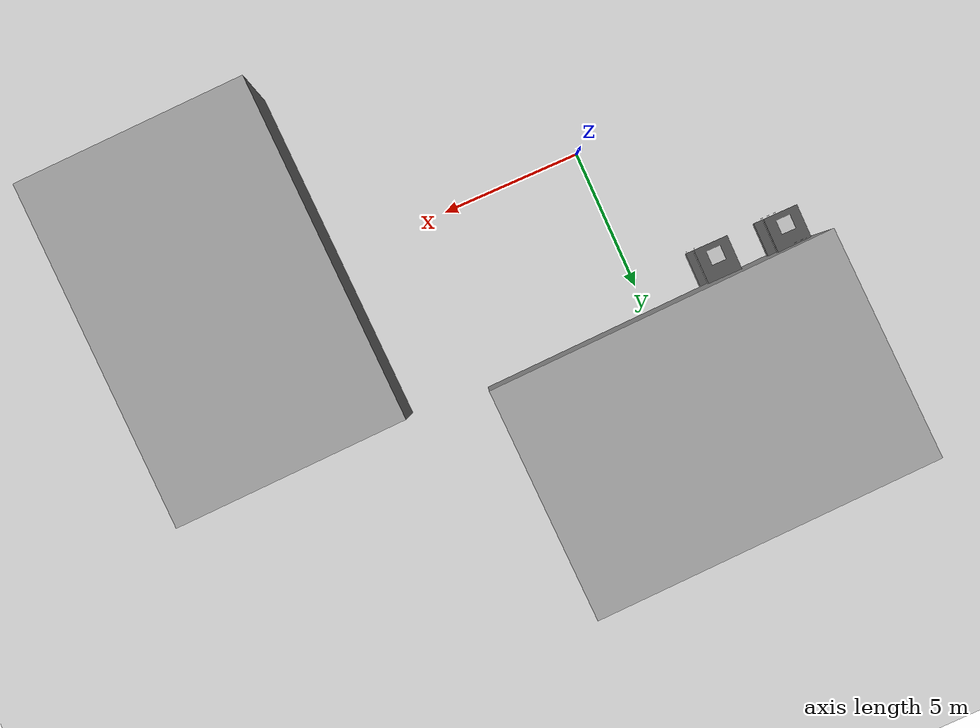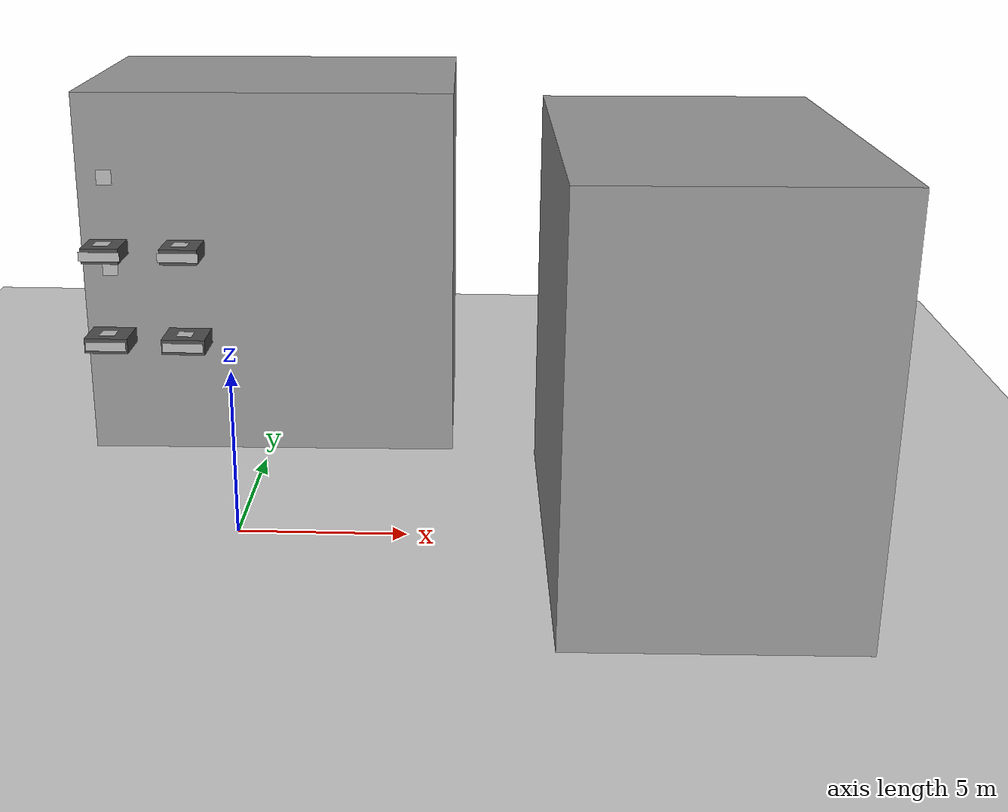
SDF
<?xml version="1.0" ?>
<sdf version="1.5">
  <world name="default">
    <include>
      <uri>model://sun</uri>
    </include>
    <include>
      <uri>model://ground_plane</uri>
    </include>
    <include>
      <uri>model://asphalt_plane</uri>
    </include>

    <include>
      <uri>model://arucotag0</uri>
      <name>arucotag_2_1_top</name>
      <pose>-5 5.15 4.3 0 0 0</pose>
    </include>

    <include>
      <uri>model://arucotag10</uri>
      <name>arucotag_2_1_side</name>
      <pose>-5 5.8 6.3 1.5708 0 0</pose>
    </include>

    <include>
      <uri>model://license_1</uri>
      <name>license_2_1_side</name>
      <pose>-5 4.65 4 1.5708 0 0</pose>
    </include>

    <include>
      <uri>model://arucotag0</uri>
      <name>arucotag_2_2_top</name>
      <pose>-2.5 5.15 4.3 0 0 0</pose>
    </include>

    <include>
      <uri>model://license_2</uri>
      <name>license_2_2_side</name>
      <pose>-2.5 4.65 4 1.5708 0 0</pose>
    </include>

    <include>
      <uri>model://arucotag0</uri>
      <name>arucotag_3_1_top</name>
      <pose>-5 5.15 7.3 0 0 0</pose>
    </include>

    <include>
      <uri>model://arucotag1</uri>
      <name>arucotag_3_1_side</name>
      <pose>-5 5.8 9.3 1.5708 0 0</pose>
    </include>

    <include>
      <uri>model://license_3</uri>
      <name>license_3_1_side</name>
      <pose>-5 4.65 7 1.5708 0 0</pose>
    </include>

    <include>
      <uri>model://arucotag0</uri>
      <name>arucotag_3_2_top</name>
      <pose>-2.5 5.15 7.3 0 0 0</pose>
    </include>

    <include>
      <uri>model://license_4</uri>
      <name>license_3_2_side</name>
      <pose>-2.5 4.65 7 1.5708 0 0</pose>
    </include>

    <physics name='default_physics' default='1' type='ode'>
      <gravity>0 0 -9.8</gravity>
      <ode>
        <solver>
          <type>quick</type>
          <iters>10</iters>
          <sor>1.3</sor>
          <use_dynamic_moi_rescaling>0</use_dynamic_moi_rescaling>
        </solver>
        <constraints>
          <cfm>0</cfm>
          <erp>0.2</erp>
          <contact_max_correcting_vel>100</contact_max_correcting_vel>
          <contact_surface_layer>0.001</contact_surface_layer>
        </constraints>
      </ode>
      <max_step_size>0.004</max_step_size>
      <real_time_factor>1</real_time_factor>
      <real_time_update_rate>250</real_time_update_rate>
      <magnetic_field>6e-06 2.3e-05 -4.2e-05</magnetic_field>
    </physics>

    <scene>
      <grid>false</grid>
      <ambient>0.4 0.4 0.4 1</ambient>
      <background>0.7 0.7 0.7 1</background>
      <shadows>true</shadows>
    </scene>

    <spherical_coordinates>
      <surface_model>EARTH_WGS84</surface_model>
      <world_frame_orientation>ENU</world_frame_orientation>
      <latitude_deg>47.397971</latitude_deg>
      <longitude_deg>8.546164</longitude_deg>
      <elevation>0</elevation>
      <heading_deg>0</heading_deg>
    </spherical_coordinates>

    <model name='unified_building'>
      <static>true</static>
      <pose>3 0 0 0 0 -1.57</pose>
      <link name='main_structure_link'>
        <pose>0 10 6 0 0 -3.11686</pose>
        <visual name='visual'>
          <geometry>
            <box>
              <size>12 8 12</size>
            </box>
          </geometry>
          <material>
              <script>
                <uri>file://media/materials/scripts/gazebo.material</uri>
                <name>Gazebo/Grey</name>
              </script>
            </material>
        </visual>
        <collision name='collision'>
          <geometry>
            <box>
              <size>12 8 12</size>
            </box>
          </geometry>
        </collision>
      </link>
    </model>

    <model name='origin_building'>
      <static>true</static>
      <pose>0 0 0 0 0 0</pose>
      <link name='main_structure_link'>
        <pose>0 10 6 0 0 -3.11686</pose>
        <visual name='visual'>
          <geometry>
            <box>
              <size>12 8 12</size>
            </box>
          </geometry>
          <material>
              <script>
                <uri>file://media/materials/scripts/gazebo.material</uri>
                <name>Gazebo/Grey</name>
              </script>
            </material>
        </visual>
        <collision name='collision'>
          <geometry>
            <box>
              <size>12 8 12</size>
            </box>
          </geometry>
        </collision>
      </link>

      <link name='platform_2_1_link'>
        <pose>-5 5.3 4 0 0 0</pose>
        <visual name='visual'>
          <geometry>
            <box>
              <size>1.4 1.2 0.5</size>
            </box>
          </geometry>
          <material>
              <script>
                <uri>file://media/materials/scripts/gazebo.material</uri>
                <name>Gazebo/DarkGrey</name>
              </script>
            </material>
        </visual>
        <collision name='collision'>
          <geometry>
            <box>
              <size>1.4 1.4 0.5</size>
            </box>
          </geometry>
        </collision>
      </link>

      <link name='platform_2_2_link'>
        <pose>-2.5 5.3 4 0 0 0</pose>
        <visual name='visual'>
          <geometry>
            <box>
              <size>1.4 1.2 0.5</size>
            </box>
          </geometry>
          <material>
              <script>
                <uri>file://media/materials/scripts/gazebo.material</uri>
                <name>Gazebo/DarkGrey</name>
              </script>
            </material>
        </visual>
        <collision name='collision'>
          <geometry>
            <box>
              <size>1.2 1.2 0.5</size>
            </box>
          </geometry>
        </collision>
      </link>

      <link name='platform_3_1_link'>
        <pose>-5 5.3 7 0 0 0</pose>
        <visual name='visual'>
          <geometry>
            <box>
              <size>1.2 1.2 0.5</size>
            </box>
          </geometry>
          <material>
              <script>
                <uri>file://media/materials/scripts/gazebo.material</uri>
                <name>Gazebo/DarkGrey</name>
              </script>
            </material>
        </visual>
        <collision name='collision'>
          <geometry>
            <box>
              <size>1.2 1.2 0.5</size>
            </box>
          </geometry>
        </collision>
      </link>

      <link name='platform_3_2_link'>
        <pose>-2.5 5.3 7 0 0 0</pose>
        <visual name='visual'>
          <geometry>
            <box>
              <size>1.2 1.2 0.5</size>
            </box>
          </geometry>
          <material>
              <script>
                <uri>file://media/materials/scripts/gazebo.material</uri>
                <name>Gazebo/DarkGrey</name>
              </script>
            </material>
        </visual>
        <collision name='collision'>
          <geometry>
            <box>
              <size>1.2 1.2 0.5</size>
            </box>
          </geometry>
        </collision>
      </link>
    </model>

    <light name='sunUTC' type='directional'>
      <pose>0 0 500 0 0 0</pose>
      <cast_shadows>true</cast_shadows>
      <intensity>1</intensity>
      <direction>0.001 0.625 -0.78</direction>
      <diffuse>0.9 0.9 0.9 1</diffuse>
      <specular>0.27 0.27 0.27 1</specular>
    </light>
  </world>
</sdf>

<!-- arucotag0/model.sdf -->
<sdf version='1.6'>
  <model name='arucotag0'>
    <static>true</static>
    <pose>0 0 0.001 0 0 0</pose>
    <link name='base'>
      <visual name='base_visual'>
        <geometry>
          <plane>
            <normal>0 0 1</normal>
            <size>0.5 0.5</size>
          </plane>
        </geometry>
        <material>
          <script>
            <uri>model://arucotag0/materials/scripts</uri>
            <uri>model://arucotag0/materials/textures</uri>
            <name>ArucoTag0/Diffuse</name>
          </script>
        </material>
      </visual>
    </link>
  </model>
</sdf>

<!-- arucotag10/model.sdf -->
<sdf version='1.6'>
  <model name='arucotag10'>
    <static>true</static>
    <pose>0 0 0.001 0 0 0</pose>
    <link name='base'>
      <visual name='base_visual'>
        <geometry>
          <plane>
            <normal>0 0 1</normal>
            <size>0.5 0.5</size>
          </plane>
        </geometry>
        <material>
          <script>
            <uri>model://arucotag10/materials/scripts</uri>
            <uri>model://arucotag10/materials/textures</uri>
            <name>ArucoTag10/Diffuse</name>
          </script>
        </material>
      </visual>
    </link>
  </model>
</sdf>

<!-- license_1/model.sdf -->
<sdf version='1.6'>
  <model name='license_1'>
    <static>true</static>
    <pose>0 0 0.001 0 0 0</pose>
    <link name='base'>
      <visual name='base_visual'>
        <geometry>
          <plane>
            <normal>0 0 1</normal>
            <size>1.31 0.3</size>
          </plane>
        </geometry>
        <material>
          <script>
            <uri>model://license_1/materials/scripts</uri>
            <uri>model://license_1/materials/textures</uri>
            <name>License1/Diffuse</name>
          </script>
        </material>
      </visual>
    </link>
  </model>
</sdf>

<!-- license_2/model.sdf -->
<sdf version='1.6'>
  <model name='license_2'>
    <static>true</static>
    <pose>0 0 0.001 0 0 0</pose>
    <link name='base'>
      <visual name='base_visual'>
        <geometry>
          <plane>
            <normal>0 0 1</normal>
            <size>1.31 0.3</size>
          </plane>
        </geometry>
        <material>
          <script>
            <uri>model://license_2/materials/scripts</uri>
            <uri>model://license_2/materials/textures</uri>
            <name>License2/Diffuse</name>
          </script>
        </material>
      </visual>
    </link>
  </model>
</sdf>

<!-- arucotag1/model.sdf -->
<sdf version='1.6'>
  <model name='arucotag1'>
    <static>true</static>
    <pose>0 0 0.001 0 0 0</pose>
    <link name='base'>
      <visual name='base_visual'>
        <geometry>
          <plane>
            <normal>0 0 1</normal>
            <size>0.5 0.5</size>
          </plane>
        </geometry>
        <material>
          <script>
            <uri>model://arucotag1/materials/scripts</uri>
            <uri>model://arucotag1/materials/textures</uri>
            <name>ArucoTag1/Diffuse</name>
          </script>
        </material>
      </visual>
    </link>
  </model>
</sdf>

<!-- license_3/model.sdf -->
<sdf version='1.6'>
  <model name='license_3'>
    <static>true</static>
    <pose>0 0 0.001 0 0 0</pose>
    <link name='base'>
      <visual name='base_visual'>
        <geometry>
          <plane>
            <normal>0 0 1</normal>
            <size>1.31 0.3</size>
          </plane>
        </geometry>
        <material>
          <script>
            <uri>model://license_3/materials/scripts</uri>
            <uri>model://license_3/materials/textures</uri>
            <name>License3/Diffuse</name>
          </script>
        </material>
      </visual>
    </link>
  </model>
</sdf>

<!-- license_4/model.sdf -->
<sdf version='1.6'>
  <model name='license_4'>
    <static>true</static>
    <pose>0 0 0.001 0 0 0</pose>
    <link name='base'>
      <visual name='base_visual'>
        <geometry>
          <plane>
            <normal>0 0 1</normal>
            <size>1.31 0.3</size>
          </plane>
        </geometry>
        <material>
          <script>
            <uri>model://license_4/materials/scripts</uri>
            <uri>model://license_4/materials/textures</uri>
            <name>License4/Diffuse</name>
          </script>
        </material>
      </visual>
    </link>
  </model>
</sdf>
